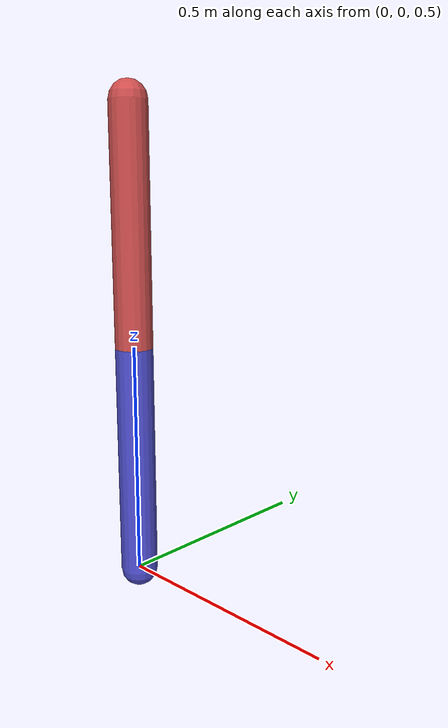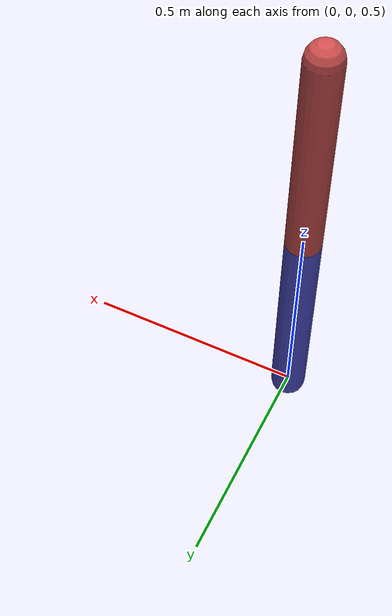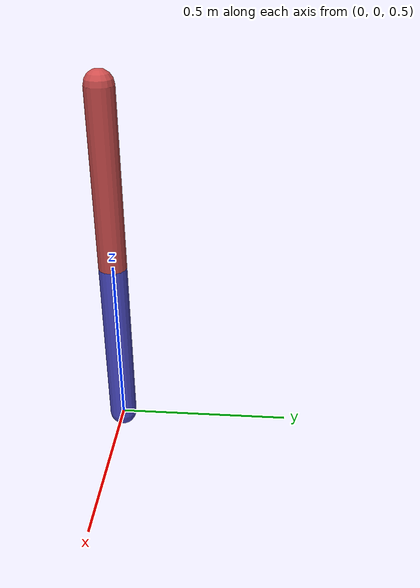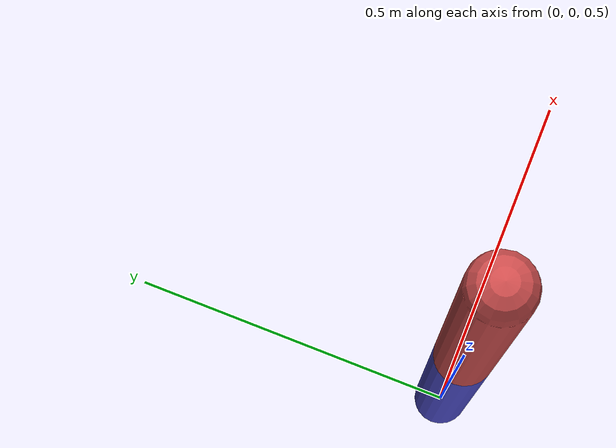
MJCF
<mujoco model="double_pendulum">
  <option gravity="0 0 -9.81" timestep="0.002"/>
  <compiler inertiafromgeom="true"/>

  <worldbody>
    <light name="top" pos="0 0 2"/>
    <camera name="side" pos="0 -5 1" xyaxes="1 0 0 0 0.5 1"/>

    <!-- First link: attached to world -->
    <body name="link1" pos="0 0 1.5">
      <joint name="hinge1" type="hinge" axis="0 1 0" damping="0.05"/>
      <geom name="rod1" type="capsule" fromto="0 0 0 0 0 -0.5"
            size="0.04" rgba="0.8 0.3 0.3 1" mass="1.0"/>

      <!-- Second link: attached to end of first link -->
      <body name="link2" pos="0 0 -0.5">
        <joint name="hinge2" type="hinge" axis="0 1 0" damping="0.05"/>
        <geom name="rod2" type="capsule" fromto="0 0 0 0 0 -0.5"
              size="0.04" rgba="0.3 0.3 0.8 1" mass="1.0"/>
        <site name="tip" pos="0 0 -0.5" size="0.02"/>
      </body>
    </body>
  </worldbody>

  <sensor>
    <jointpos name="theta1" joint="hinge1"/>
    <jointpos name="theta2" joint="hinge2"/>
  </sensor>
</mujoco>
